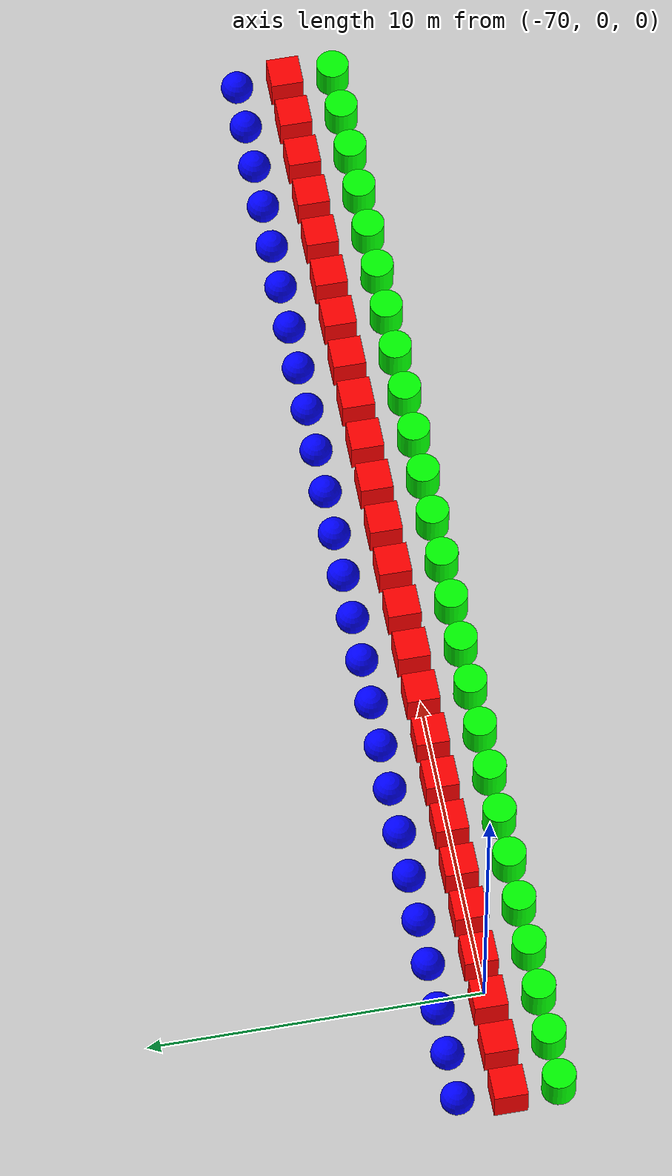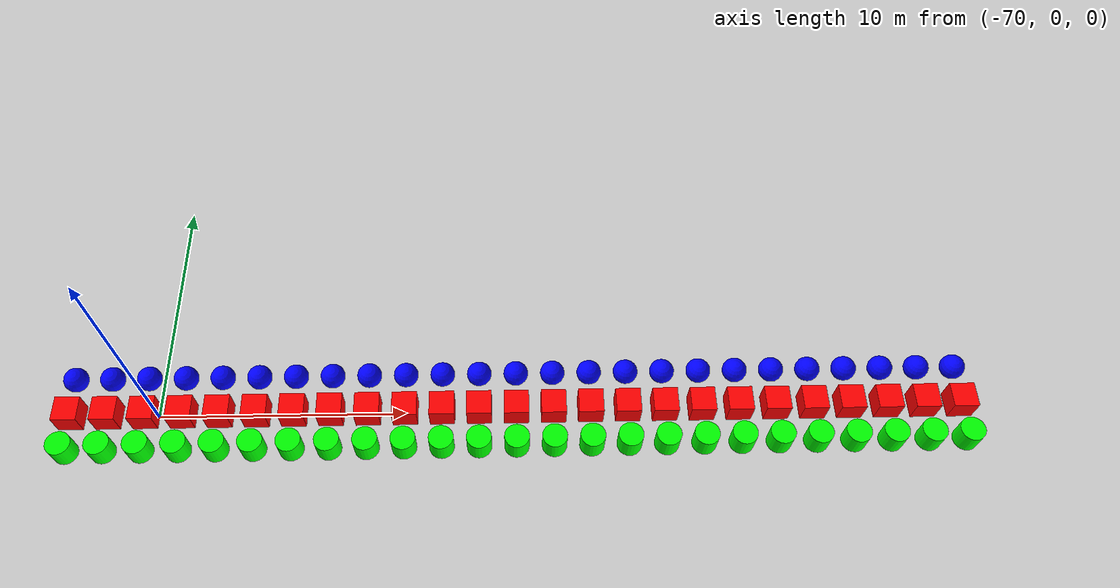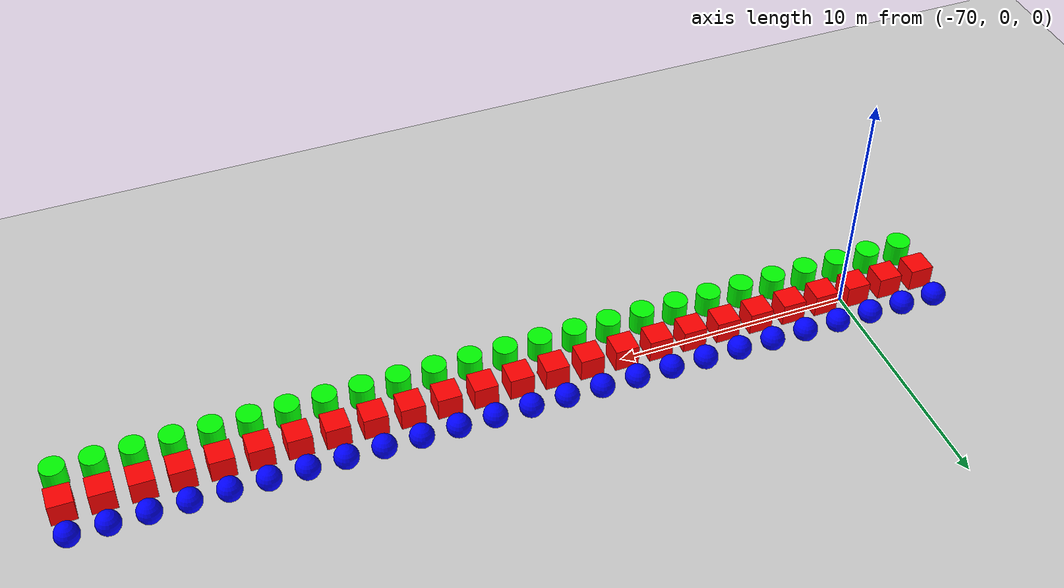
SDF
<sdf version="1.6">
 <world name="shapes">
  <model name="ground_plane">
   <static>true</static>
   <link name="link">
    <collision name="collision">
     <geometry><plane><normal>0 0 1</normal><size>100 100</size></plane></geometry>
    </collision>
    <visual name="visual">
     <geometry><plane><normal>0 0 1</normal><size>100 100</size></plane></geometry>
     <material>
      <ambient>0.8 0.8 0.8 1</ambient>
      <diffuse>0.8 0.8 0.8 1</diffuse>
      <specular>0.8 0.8 0.8 1</specular>
     </material>
    </visual>
   </link>
  </model>
  <model name="box_451">
   <static>false</static>
   <pose>-73.5 0 0.5 0 0 0</pose>
   <link name="box_link">
    <inertial>
     <inertia><ixx>1</ixx><ixy>0</ixy><ixz>0</ixz><iyy>1</iyy><iyz>0</iyz><izz>1</izz></inertia>
     <mass>1.0</mass>
    </inertial>
    <collision name="box_collision"><geometry><box><size>1 1 1</size></box></geometry></collision>
    <visual name="box_visual">
     <geometry><box><size>1 1 1</size></box></geometry>
     <material><ambient>1 0 0 1</ambient><diffuse>1 0 0 1</diffuse><specular>1 0 0 1</specular></material>
    </visual>
   </link>
  </model>
  <model name="cylinder_451">
   <static>false</static>
   <pose>-73.5 -1.5 0.5 0 0 0</pose>
   <link name="cylinder_link">
    <inertial>
     <inertia><ixx>2</ixx><ixy>0</ixy><ixz>0</ixz><iyy>2</iyy><iyz>0</iyz><izz>2</izz></inertia>
     <mass>2.0</mass>
    </inertial>
    <collision name="cylinder_collision">
     <geometry><cylinder><radius>0.5</radius><length>1.0</length></cylinder></geometry>
    </collision>
    <visual name="cylinder_visual">
     <geometry><cylinder><radius>0.5</radius><length>1.0</length></cylinder></geometry>
     <material><ambient>0 1 0 1</ambient><diffuse>0 1 0 1</diffuse><specular>0 1 0 1</specular></material>
    </visual>
   </link>
  </model>
  <model name="sphere_451">
   <static>false</static>
   <pose>-73.5 1.5 0.5 0 0 0</pose>
   <link name="sphere_link">
    <inertial>
     <inertia><ixx>3</ixx><ixy>0</ixy><ixz>0</ixz><iyy>3</iyy><iyz>0</iyz><izz>3</izz></inertia>
     <mass>3.0</mass>
    </inertial>
    <collision name="sphere_collision"><geometry><sphere><radius>0.5</radius></sphere></geometry></collision>
    <visual name="sphere_visual">
     <geometry><sphere><radius>0.5</radius></sphere></geometry>
     <material><ambient>0 0 1 1</ambient><diffuse>0 0 1 1</diffuse><specular>0 0 1 1</specular></material>
    </visual>
   </link>
  </model>
  <model name="box_452">
   <static>false</static>
   <pose>-72.0 0 0.5 0 0 0</pose>
   <link name="box_link">
    <inertial>
     <inertia><ixx>1</ixx><ixy>0</ixy><ixz>0</ixz><iyy>1</iyy><iyz>0</iyz><izz>1</izz></inertia>
     <mass>1.0</mass>
    </inertial>
    <collision name="box_collision"><geometry><box><size>1 1 1</size></box></geometry></collision>
    <visual name="box_visual">
     <geometry><box><size>1 1 1</size></box></geometry>
     <material><ambient>1 0 0 1</ambient><diffuse>1 0 0 1</diffuse><specular>1 0 0 1</specular></material>
    </visual>
   </link>
  </model>
  <model name="cylinder_452">
   <static>false</static>
   <pose>-72.0 -1.5 0.5 0 0 0</pose>
   <link name="cylinder_link">
    <inertial>
     <inertia><ixx>2</ixx><ixy>0</ixy><ixz>0</ixz><iyy>2</iyy><iyz>0</iyz><izz>2</izz></inertia>
     <mass>2.0</mass>
    </inertial>
    <collision name="cylinder_collision">
     <geometry><cylinder><radius>0.5</radius><length>1.0</length></cylinder></geometry>
    </collision>
    <visual name="cylinder_visual">
     <geometry><cylinder><radius>0.5</radius><length>1.0</length></cylinder></geometry>
     <material><ambient>0 1 0 1</ambient><diffuse>0 1 0 1</diffuse><specular>0 1 0 1</specular></material>
    </visual>
   </link>
  </model>
  <model name="sphere_452">
   <static>false</static>
   <pose>-72.0 1.5 0.5 0 0 0</pose>
   <link name="sphere_link">
    <inertial>
     <inertia><ixx>3</ixx><ixy>0</ixy><ixz>0</ixz><iyy>3</iyy><iyz>0</iyz><izz>3</izz></inertia>
     <mass>3.0</mass>
    </inertial>
    <collision name="sphere_collision"><geometry><sphere><radius>0.5</radius></sphere></geometry></collision>
    <visual name="sphere_visual">
     <geometry><sphere><radius>0.5</radius></sphere></geometry>
     <material><ambient>0 0 1 1</ambient><diffuse>0 0 1 1</diffuse><specular>0 0 1 1</specular></material>
    </visual>
   </link>
  </model>
  <model name="box_453">
   <static>false</static>
   <pose>-70.5 0 0.5 0 0 0</pose>
   <link name="box_link">
    <inertial>
     <inertia><ixx>1</ixx><ixy>0</ixy><ixz>0</ixz><iyy>1</iyy><iyz>0</iyz><izz>1</izz></inertia>
     <mass>1.0</mass>
    </inertial>
    <collision name="box_collision"><geometry><box><size>1 1 1</size></box></geometry></collision>
    <visual name="box_visual">
     <geometry><box><size>1 1 1</size></box></geometry>
     <material><ambient>1 0 0 1</ambient><diffuse>1 0 0 1</diffuse><specular>1 0 0 1</specular></material>
    </visual>
   </link>
  </model>
  <model name="cylinder_453">
   <static>false</static>
   <pose>-70.5 -1.5 0.5 0 0 0</pose>
   <link name="cylinder_link">
    <inertial>
     <inertia><ixx>2</ixx><ixy>0</ixy><ixz>0</ixz><iyy>2</iyy><iyz>0</iyz><izz>2</izz></inertia>
     <mass>2.0</mass>
    </inertial>
    <collision name="cylinder_collision">
     <geometry><cylinder><radius>0.5</radius><length>1.0</length></cylinder></geometry>
    </collision>
    <visual name="cylinder_visual">
     <geometry><cylinder><radius>0.5</radius><length>1.0</length></cylinder></geometry>
     <material><ambient>0 1 0 1</ambient><diffuse>0 1 0 1</diffuse><specular>0 1 0 1</specular></material>
    </visual>
   </link>
  </model>
  <model name="sphere_453">
   <static>false</static>
   <pose>-70.5 1.5 0.5 0 0 0</pose>
   <link name="sphere_link">
    <inertial>
     <inertia><ixx>3</ixx><ixy>0</ixy><ixz>0</ixz><iyy>3</iyy><iyz>0</iyz><izz>3</izz></inertia>
     <mass>3.0</mass>
    </inertial>
    <collision name="sphere_collision"><geometry><sphere><radius>0.5</radius></sphere></geometry></collision>
    <visual name="sphere_visual">
     <geometry><sphere><radius>0.5</radius></sphere></geometry>
     <material><ambient>0 0 1 1</ambient><diffuse>0 0 1 1</diffuse><specular>0 0 1 1</specular></material>
    </visual>
   </link>
  </model>
  <model name="box_454">
   <static>false</static>
   <pose>-69.0 0 0.5 0 0 0</pose>
   <link name="box_link">
    <inertial>
     <inertia><ixx>1</ixx><ixy>0</ixy><ixz>0</ixz><iyy>1</iyy><iyz>0</iyz><izz>1</izz></inertia>
     <mass>1.0</mass>
    </inertial>
    <collision name="box_collision"><geometry><box><size>1 1 1</size></box></geometry></collision>
    <visual name="box_visual">
     <geometry><box><size>1 1 1</size></box></geometry>
     <material><ambient>1 0 0 1</ambient><diffuse>1 0 0 1</diffuse><specular>1 0 0 1</specular></material>
    </visual>
   </link>
  </model>
  <model name="cylinder_454">
   <static>false</static>
   <pose>-69.0 -1.5 0.5 0 0 0</pose>
   <link name="cylinder_link">
    <inertial>
     <inertia><ixx>2</ixx><ixy>0</ixy><ixz>0</ixz><iyy>2</iyy><iyz>0</iyz><izz>2</izz></inertia>
     <mass>2.0</mass>
    </inertial>
    <collision name="cylinder_collision">
     <geometry><cylinder><radius>0.5</radius><length>1.0</length></cylinder></geometry>
    </collision>
    <visual name="cylinder_visual">
     <geometry><cylinder><radius>0.5</radius><length>1.0</length></cylinder></geometry>
     <material><ambient>0 1 0 1</ambient><diffuse>0 1 0 1</diffuse><specular>0 1 0 1</specular></material>
    </visual>
   </link>
  </model>
  <model name="sphere_454">
   <static>false</static>
   <pose>-69.0 1.5 0.5 0 0 0</pose>
   <link name="sphere_link">
    <inertial>
     <inertia><ixx>3</ixx><ixy>0</ixy><ixz>0</ixz><iyy>3</iyy><iyz>0</iyz><izz>3</izz></inertia>
     <mass>3.0</mass>
    </inertial>
    <collision name="sphere_collision"><geometry><sphere><radius>0.5</radius></sphere></geometry></collision>
    <visual name="sphere_visual">
     <geometry><sphere><radius>0.5</radius></sphere></geometry>
     <material><ambient>0 0 1 1</ambient><diffuse>0 0 1 1</diffuse><specular>0 0 1 1</specular></material>
    </visual>
   </link>
  </model>
  <model name="box_455">
   <static>false</static>
   <pose>-67.5 0 0.5 0 0 0</pose>
   <link name="box_link">
    <inertial>
     <inertia><ixx>1</ixx><ixy>0</ixy><ixz>0</ixz><iyy>1</iyy><iyz>0</iyz><izz>1</izz></inertia>
     <mass>1.0</mass>
    </inertial>
    <collision name="box_collision"><geometry><box><size>1 1 1</size></box></geometry></collision>
    <visual name="box_visual">
     <geometry><box><size>1 1 1</size></box></geometry>
     <material><ambient>1 0 0 1</ambient><diffuse>1 0 0 1</diffuse><specular>1 0 0 1</specular></material>
    </visual>
   </link>
  </model>
  <model name="cylinder_455">
   <static>false</static>
   <pose>-67.5 -1.5 0.5 0 0 0</pose>
   <link name="cylinder_link">
    <inertial>
     <inertia><ixx>2</ixx><ixy>0</ixy><ixz>0</ixz><iyy>2</iyy><iyz>0</iyz><izz>2</izz></inertia>
     <mass>2.0</mass>
    </inertial>
    <collision name="cylinder_collision">
     <geometry><cylinder><radius>0.5</radius><length>1.0</length></cylinder></geometry>
    </collision>
    <visual name="cylinder_visual">
     <geometry><cylinder><radius>0.5</radius><length>1.0</length></cylinder></geometry>
     <material><ambient>0 1 0 1</ambient><diffuse>0 1 0 1</diffuse><specular>0 1 0 1</specular></material>
    </visual>
   </link>
  </model>
  <model name="sphere_455">
   <static>false</static>
   <pose>-67.5 1.5 0.5 0 0 0</pose>
   <link name="sphere_link">
    <inertial>
     <inertia><ixx>3</ixx><ixy>0</ixy><ixz>0</ixz><iyy>3</iyy><iyz>0</iyz><izz>3</izz></inertia>
     <mass>3.0</mass>
    </inertial>
    <collision name="sphere_collision"><geometry><sphere><radius>0.5</radius></sphere></geometry></collision>
    <visual name="sphere_visual">
     <geometry><sphere><radius>0.5</radius></sphere></geometry>
     <material><ambient>0 0 1 1</ambient><diffuse>0 0 1 1</diffuse><specular>0 0 1 1</specular></material>
    </visual>
   </link>
  </model>
  <model name="box_456">
   <static>false</static>
   <pose>-66.0 0 0.5 0 0 0</pose>
   <link name="box_link">
    <inertial>
     <inertia><ixx>1</ixx><ixy>0</ixy><ixz>0</ixz><iyy>1</iyy><iyz>0</iyz><izz>1</izz></inertia>
     <mass>1.0</mass>
    </inertial>
    <collision name="box_collision"><geometry><box><size>1 1 1</size></box></geometry></collision>
    <visual name="box_visual">
     <geometry><box><size>1 1 1</size></box></geometry>
     <material><ambient>1 0 0 1</ambient><diffuse>1 0 0 1</diffuse><specular>1 0 0 1</specular></material>
    </visual>
   </link>
  </model>
  <model name="cylinder_456">
   <static>false</static>
   <pose>-66.0 -1.5 0.5 0 0 0</pose>
   <link name="cylinder_link">
    <inertial>
     <inertia><ixx>2</ixx><ixy>0</ixy><ixz>0</ixz><iyy>2</iyy><iyz>0</iyz><izz>2</izz></inertia>
     <mass>2.0</mass>
    </inertial>
    <collision name="cylinder_collision">
     <geometry><cylinder><radius>0.5</radius><length>1.0</length></cylinder></geometry>
    </collision>
    <visual name="cylinder_visual">
     <geometry><cylinder><radius>0.5</radius><length>1.0</length></cylinder></geometry>
     <material><ambient>0 1 0 1</ambient><diffuse>0 1 0 1</diffuse><specular>0 1 0 1</specular></material>
    </visual>
   </link>
  </model>
  <model name="sphere_456">
   <static>false</static>
   <pose>-66.0 1.5 0.5 0 0 0</pose>
   <link name="sphere_link">
    <inertial>
     <inertia><ixx>3</ixx><ixy>0</ixy><ixz>0</ixz><iyy>3</iyy><iyz>0</iyz><izz>3</izz></inertia>
     <mass>3.0</mass>
    </inertial>
    <collision name="sphere_collision"><geometry><sphere><radius>0.5</radius></sphere></geometry></collision>
    <visual name="sphere_visual">
     <geometry><sphere><radius>0.5</radius></sphere></geometry>
     <material><ambient>0 0 1 1</ambient><diffuse>0 0 1 1</diffuse><specular>0 0 1 1</specular></material>
    </visual>
   </link>
  </model>
  <model name="box_457">
   <static>false</static>
   <pose>-64.5 0 0.5 0 0 0</pose>
   <link name="box_link">
    <inertial>
     <inertia><ixx>1</ixx><ixy>0</ixy><ixz>0</ixz><iyy>1</iyy><iyz>0</iyz><izz>1</izz></inertia>
     <mass>1.0</mass>
    </inertial>
    <collision name="box_collision"><geometry><box><size>1 1 1</size></box></geometry></collision>
    <visual name="box_visual">
     <geometry><box><size>1 1 1</size></box></geometry>
     <material><ambient>1 0 0 1</ambient><diffuse>1 0 0 1</diffuse><specular>1 0 0 1</specular></material>
    </visual>
   </link>
  </model>
  <model name="cylinder_457">
   <static>false</static>
   <pose>-64.5 -1.5 0.5 0 0 0</pose>
   <link name="cylinder_link">
    <inertial>
     <inertia><ixx>2</ixx><ixy>0</ixy><ixz>0</ixz><iyy>2</iyy><iyz>0</iyz><izz>2</izz></inertia>
     <mass>2.0</mass>
    </inertial>
    <collision name="cylinder_collision">
     <geometry><cylinder><radius>0.5</radius><length>1.0</length></cylinder></geometry>
    </collision>
    <visual name="cylinder_visual">
     <geometry><cylinder><radius>0.5</radius><length>1.0</length></cylinder></geometry>
     <material><ambient>0 1 0 1</ambient><diffuse>0 1 0 1</diffuse><specular>0 1 0 1</specular></material>
    </visual>
   </link>
  </model>
  <model name="sphere_457">
   <static>false</static>
   <pose>-64.5 1.5 0.5 0 0 0</pose>
   <link name="sphere_link">
    <inertial>
     <inertia><ixx>3</ixx><ixy>0</ixy><ixz>0</ixz><iyy>3</iyy><iyz>0</iyz><izz>3</izz></inertia>
     <mass>3.0</mass>
    </inertial>
    <collision name="sphere_collision"><geometry><sphere><radius>0.5</radius></sphere></geometry></collision>
    <visual name="sphere_visual">
     <geometry><sphere><radius>0.5</radius></sphere></geometry>
     <material><ambient>0 0 1 1</ambient><diffuse>0 0 1 1</diffuse><specular>0 0 1 1</specular></material>
    </visual>
   </link>
  </model>
  <model name="box_458">
   <static>false</static>
   <pose>-63.0 0 0.5 0 0 0</pose>
   <link name="box_link">
    <inertial>
     <inertia><ixx>1</ixx><ixy>0</ixy><ixz>0</ixz><iyy>1</iyy><iyz>0</iyz><izz>1</izz></inertia>
     <mass>1.0</mass>
    </inertial>
    <collision name="box_collision"><geometry><box><size>1 1 1</size></box></geometry></collision>
    <visual name="box_visual">
     <geometry><box><size>1 1 1</size></box></geometry>
     <material><ambient>1 0 0 1</ambient><diffuse>1 0 0 1</diffuse><specular>1 0 0 1</specular></material>
    </visual>
   </link>
  </model>
  <model name="cylinder_458">
   <static>false</static>
   <pose>-63.0 -1.5 0.5 0 0 0</pose>
   <link name="cylinder_link">
    <inertial>
     <inertia><ixx>2</ixx><ixy>0</ixy><ixz>0</ixz><iyy>2</iyy><iyz>0</iyz><izz>2</izz></inertia>
     <mass>2.0</mass>
    </inertial>
    <collision name="cylinder_collision">
     <geometry><cylinder><radius>0.5</radius><length>1.0</length></cylinder></geometry>
    </collision>
    <visual name="cylinder_visual">
     <geometry><cylinder><radius>0.5</radius><length>1.0</length></cylinder></geometry>
     <material><ambient>0 1 0 1</ambient><diffuse>0 1 0 1</diffuse><specular>0 1 0 1</specular></material>
    </visual>
   </link>
  </model>
  <model name="sphere_458">
   <static>false</static>
   <pose>-63.0 1.5 0.5 0 0 0</pose>
   <link name="sphere_link">
    <inertial>
     <inertia><ixx>3</ixx><ixy>0</ixy><ixz>0</ixz><iyy>3</iyy><iyz>0</iyz><izz>3</izz></inertia>
     <mass>3.0</mass>
    </inertial>
    <collision name="sphere_collision"><geometry><sphere><radius>0.5</radius></sphere></geometry></collision>
    <visual name="sphere_visual">
     <geometry><sphere><radius>0.5</radius></sphere></geometry>
     <material><ambient>0 0 1 1</ambient><diffuse>0 0 1 1</diffuse><specular>0 0 1 1</specular></material>
    </visual>
   </link>
  </model>
  <model name="box_459">
   <static>false</static>
   <pose>-61.5 0 0.5 0 0 0</pose>
   <link name="box_link">
    <inertial>
     <inertia><ixx>1</ixx><ixy>0</ixy><ixz>0</ixz><iyy>1</iyy><iyz>0</iyz><izz>1</izz></inertia>
     <mass>1.0</mass>
    </inertial>
    <collision name="box_collision"><geometry><box><size>1 1 1</size></box></geometry></collision>
    <visual name="box_visual">
     <geometry><box><size>1 1 1</size></box></geometry>
     <material><ambient>1 0 0 1</ambient><diffuse>1 0 0 1</diffuse><specular>1 0 0 1</specular></material>
    </visual>
   </link>
  </model>
  <model name="cylinder_459">
   <static>false</static>
   <pose>-61.5 -1.5 0.5 0 0 0</pose>
   <link name="cylinder_link">
    <inertial>
     <inertia><ixx>2</ixx><ixy>0</ixy><ixz>0</ixz><iyy>2</iyy><iyz>0</iyz><izz>2</izz></inertia>
     <mass>2.0</mass>
    </inertial>
    <collision name="cylinder_collision">
     <geometry><cylinder><radius>0.5</radius><length>1.0</length></cylinder></geometry>
    </collision>
    <visual name="cylinder_visual">
     <geometry><cylinder><radius>0.5</radius><length>1.0</length></cylinder></geometry>
     <material><ambient>0 1 0 1</ambient><diffuse>0 1 0 1</diffuse><specular>0 1 0 1</specular></material>
    </visual>
   </link>
  </model>
  <model name="sphere_459">
   <static>false</static>
   <pose>-61.5 1.5 0.5 0 0 0</pose>
   <link name="sphere_link">
    <inertial>
     <inertia><ixx>3</ixx><ixy>0</ixy><ixz>0</ixz><iyy>3</iyy><iyz>0</iyz><izz>3</izz></inertia>
     <mass>3.0</mass>
    </inertial>
    <collision name="sphere_collision"><geometry><sphere><radius>0.5</radius></sphere></geometry></collision>
    <visual name="sphere_visual">
     <geometry><sphere><radius>0.5</radius></sphere></geometry>
     <material><ambient>0 0 1 1</ambient><diffuse>0 0 1 1</diffuse><specular>0 0 1 1</specular></material>
    </visual>
   </link>
  </model>
  <model name="box_460">
   <static>false</static>
   <pose>-60.0 0 0.5 0 0 0</pose>
   <link name="box_link">
    <inertial>
     <inertia><ixx>1</ixx><ixy>0</ixy><ixz>0</ixz><iyy>1</iyy><iyz>0</iyz><izz>1</izz></inertia>
     <mass>1.0</mass>
    </inertial>
    <collision name="box_collision"><geometry><box><size>1 1 1</size></box></geometry></collision>
    <visual name="box_visual">
     <geometry><box><size>1 1 1</size></box></geometry>
     <material><ambient>1 0 0 1</ambient><diffuse>1 0 0 1</diffuse><specular>1 0 0 1</specular></material>
    </visual>
   </link>
  </model>
  <model name="cylinder_460">
   <static>false</static>
   <pose>-60.0 -1.5 0.5 0 0 0</pose>
   <link name="cylinder_link">
    <inertial>
     <inertia><ixx>2</ixx><ixy>0</ixy><ixz>0</ixz><iyy>2</iyy><iyz>0</iyz><izz>2</izz></inertia>
     <mass>2.0</mass>
    </inertial>
    <collision name="cylinder_collision">
     <geometry><cylinder><radius>0.5</radius><length>1.0</length></cylinder></geometry>
    </collision>
    <visual name="cylinder_visual">
     <geometry><cylinder><radius>0.5</radius><length>1.0</length></cylinder></geometry>
     <material><ambient>0 1 0 1</ambient><diffuse>0 1 0 1</diffuse><specular>0 1 0 1</specular></material>
    </visual>
   </link>
  </model>
  <model name="sphere_460">
   <static>false</static>
   <pose>-60.0 1.5 0.5 0 0 0</pose>
   <link name="sphere_link">
    <inertial>
     <inertia><ixx>3</ixx><ixy>0</ixy><ixz>0</ixz><iyy>3</iyy><iyz>0</iyz><izz>3</izz></inertia>
     <mass>3.0</mass>
    </inertial>
    <collision name="sphere_collision"><geometry><sphere><radius>0.5</radius></sphere></geometry></collision>
    <visual name="sphere_visual">
     <geometry><sphere><radius>0.5</radius></sphere></geometry>
     <material><ambient>0 0 1 1</ambient><diffuse>0 0 1 1</diffuse><specular>0 0 1 1</specular></material>
    </visual>
   </link>
  </model>
  <model name="box_461">
   <static>false</static>
   <pose>-58.5 0 0.5 0 0 0</pose>
   <link name="box_link">
    <inertial>
     <inertia><ixx>1</ixx><ixy>0</ixy><ixz>0</ixz><iyy>1</iyy><iyz>0</iyz><izz>1</izz></inertia>
     <mass>1.0</mass>
    </inertial>
    <collision name="box_collision"><geometry><box><size>1 1 1</size></box></geometry></collision>
    <visual name="box_visual">
     <geometry><box><size>1 1 1</size></box></geometry>
     <material><ambient>1 0 0 1</ambient><diffuse>1 0 0 1</diffuse><specular>1 0 0 1</specular></material>
    </visual>
   </link>
  </model>
  <model name="cylinder_461">
   <static>false</static>
   <pose>-58.5 -1.5 0.5 0 0 0</pose>
   <link name="cylinder_link">
    <inertial>
     <inertia><ixx>2</ixx><ixy>0</ixy><ixz>0</ixz><iyy>2</iyy><iyz>0</iyz><izz>2</izz></inertia>
     <mass>2.0</mass>
    </inertial>
    <collision name="cylinder_collision">
     <geometry><cylinder><radius>0.5</radius><length>1.0</length></cylinder></geometry>
    </collision>
    <visual name="cylinder_visual">
     <geometry><cylinder><radius>0.5</radius><length>1.0</length></cylinder></geometry>
     <material><ambient>0 1 0 1</ambient><diffuse>0 1 0 1</diffuse><specular>0 1 0 1</specular></material>
    </visual>
   </link>
  </model>
  <model name="sphere_461">
   <static>false</static>
   <pose>-58.5 1.5 0.5 0 0 0</pose>
   <link name="sphere_link">
    <inertial>
     <inertia><ixx>3</ixx><ixy>0</ixy><ixz>0</ixz><iyy>3</iyy><iyz>0</iyz><izz>3</izz></inertia>
     <mass>3.0</mass>
    </inertial>
    <collision name="sphere_collision"><geometry><sphere><radius>0.5</radius></sphere></geometry></collision>
    <visual name="sphere_visual">
     <geometry><sphere><radius>0.5</radius></sphere></geometry>
     <material><ambient>0 0 1 1</ambient><diffuse>0 0 1 1</diffuse><specular>0 0 1 1</specular></material>
    </visual>
   </link>
  </model>
  <model name="box_462">
   <static>false</static>
   <pose>-57.0 0 0.5 0 0 0</pose>
   <link name="box_link">
    <inertial>
     <inertia><ixx>1</ixx><ixy>0</ixy><ixz>0</ixz><iyy>1</iyy><iyz>0</iyz><izz>1</izz></inertia>
     <mass>1.0</mass>
    </inertial>
    <collision name="box_collision"><geometry><box><size>1 1 1</size></box></geometry></collision>
    <visual name="box_visual">
     <geometry><box><size>1 1 1</size></box></geometry>
     <material><ambient>1 0 0 1</ambient><diffuse>1 0 0 1</diffuse><specular>1 0 0 1</specular></material>
    </visual>
   </link>
  </model>
  <model name="cylinder_462">
   <static>false</static>
   <pose>-57.0 -1.5 0.5 0 0 0</pose>
   <link name="cylinder_link">
    <inertial>
     <inertia><ixx>2</ixx><ixy>0</ixy><ixz>0</ixz><iyy>2</iyy><iyz>0</iyz><izz>2</izz></inertia>
     <mass>2.0</mass>
    </inertial>
    <collision name="cylinder_collision">
     <geometry><cylinder><radius>0.5</radius><length>1.0</length></cylinder></geometry>
    </collision>
    <visual name="cylinder_visual">
     <geometry><cylinder><radius>0.5</radius><length>1.0</length></cylinder></geometry>
     <material><ambient>0 1 0 1</ambient><diffuse>0 1 0 1</diffuse><specular>0 1 0 1</specular></material>
    </visual>
   </link>
  </model>
  <model name="sphere_462">
   <static>false</static>
   <pose>-57.0 1.5 0.5 0 0 0</pose>
   <link name="sphere_link">
    <inertial>
     <inertia><ixx>3</ixx><ixy>0</ixy><ixz>0</ixz><iyy>3</iyy><iyz>0</iyz><izz>3</izz></inertia>
     <mass>3.0</mass>
    </inertial>
    <collision name="sphere_collision"><geometry><sphere><radius>0.5</radius></sphere></geometry></collision>
    <visual name="sphere_visual">
     <geometry><sphere><radius>0.5</radius></sphere></geometry>
     <material><ambient>0 0 1 1</ambient><diffuse>0 0 1 1</diffuse><specular>0 0 1 1</specular></material>
    </visual>
   </link>
  </model>
  <model name="box_463">
   <static>false</static>
   <pose>-55.5 0 0.5 0 0 0</pose>
   <link name="box_link">
    <inertial>
     <inertia><ixx>1</ixx><ixy>0</ixy><ixz>0</ixz><iyy>1</iyy><iyz>0</iyz><izz>1</izz></inertia>
     <mass>1.0</mass>
    </inertial>
    <collision name="box_collision"><geometry><box><size>1 1 1</size></box></geometry></collision>
    <visual name="box_visual">
     <geometry><box><size>1 1 1</size></box></geometry>
     <material><ambient>1 0 0 1</ambient><diffuse>1 0 0 1</diffuse><specular>1 0 0 1</specular></material>
    </visual>
   </link>
  </model>
  <model name="cylinder_463">
   <static>false</static>
   <pose>-55.5 -1.5 0.5 0 0 0</pose>
   <link name="cylinder_link">
    <inertial>
     <inertia><ixx>2</ixx><ixy>0</ixy><ixz>0</ixz><iyy>2</iyy><iyz>0</iyz><izz>2</izz></inertia>
     <mass>2.0</mass>
    </inertial>
    <collision name="cylinder_collision">
     <geometry><cylinder><radius>0.5</radius><length>1.0</length></cylinder></geometry>
    </collision>
    <visual name="cylinder_visual">
     <geometry><cylinder><radius>0.5</radius><length>1.0</length></cylinder></geometry>
     <material><ambient>0 1 0 1</ambient><diffuse>0 1 0 1</diffuse><specular>0 1 0 1</specular></material>
    </visual>
   </link>
  </model>
  <model name="sphere_463">
   <static>false</static>
   <pose>-55.5 1.5 0.5 0 0 0</pose>
   <link name="sphere_link">
    <inertial>
     <inertia><ixx>3</ixx><ixy>0</ixy><ixz>0</ixz><iyy>3</iyy><iyz>0</iyz><izz>3</izz></inertia>
     <mass>3.0</mass>
    </inertial>
    <collision name="sphere_collision"><geometry><sphere><radius>0.5</radius></sphere></geometry></collision>
    <visual name="sphere_visual">
     <geometry><sphere><radius>0.5</radius></sphere></geometry>
     <material><ambient>0 0 1 1</ambient><diffuse>0 0 1 1</diffuse><specular>0 0 1 1</specular></material>
    </visual>
   </link>
  </model>
  <model name="box_464">
   <static>false</static>
   <pose>-54.0 0 0.5 0 0 0</pose>
   <link name="box_link">
    <inertial>
     <inertia><ixx>1</ixx><ixy>0</ixy><ixz>0</ixz><iyy>1</iyy><iyz>0</iyz><izz>1</izz></inertia>
     <mass>1.0</mass>
    </inertial>
    <collision name="box_collision"><geometry><box><size>1 1 1</size></box></geometry></collision>
    <visual name="box_visual">
     <geometry><box><size>1 1 1</size></box></geometry>
     <material><ambient>1 0 0 1</ambient><diffuse>1 0 0 1</diffuse><specular>1 0 0 1</specular></material>
    </visual>
   </link>
  </model>
  <model name="cylinder_464">
   <static>false</static>
   <pose>-54.0 -1.5 0.5 0 0 0</pose>
   <link name="cylinder_link">
    <inertial>
     <inertia><ixx>2</ixx><ixy>0</ixy><ixz>0</ixz><iyy>2</iyy><iyz>0</iyz><izz>2</izz></inertia>
     <mass>2.0</mass>
    </inertial>
    <collision name="cylinder_collision">
     <geometry><cylinder><radius>0.5</radius><length>1.0</length></cylinder></geometry>
    </collision>
    <visual name="cylinder_visual">
     <geometry><cylinder><radius>0.5</radius><length>1.0</length></cylinder></geometry>
     <material><ambient>0 1 0 1</ambient><diffuse>0 1 0 1</diffuse><specular>0 1 0 1</specular></material>
    </visual>
   </link>
  </model>
  <model name="sphere_464">
   <static>false</static>
   <pose>-54.0 1.5 0.5 0 0 0</pose>
   <link name="sphere_link">
    <inertial>
     <inertia><ixx>3</ixx><ixy>0</ixy><ixz>0</ixz><iyy>3</iyy><iyz>0</iyz><izz>3</izz></inertia>
     <mass>3.0</mass>
    </inertial>
    <collision name="sphere_collision"><geometry><sphere><radius>0.5</radius></sphere></geometry></collision>
    <visual name="sphere_visual">
     <geometry><sphere><radius>0.5</radius></sphere></geometry>
     <material><ambient>0 0 1 1</ambient><diffuse>0 0 1 1</diffuse><specular>0 0 1 1</specular></material>
    </visual>
   </link>
  </model>
  <model name="box_465">
   <static>false</static>
   <pose>-52.5 0 0.5 0 0 0</pose>
   <link name="box_link">
    <inertial>
     <inertia><ixx>1</ixx><ixy>0</ixy><ixz>0</ixz><iyy>1</iyy><iyz>0</iyz><izz>1</izz></inertia>
     <mass>1.0</mass>
    </inertial>
    <collision name="box_collision"><geometry><box><size>1 1 1</size></box></geometry></collision>
    <visual name="box_visual">
     <geometry><box><size>1 1 1</size></box></geometry>
     <material><ambient>1 0 0 1</ambient><diffuse>1 0 0 1</diffuse><specular>1 0 0 1</specular></material>
    </visual>
   </link>
  </model>
  <model name="cylinder_465">
   <static>false</static>
   <pose>-52.5 -1.5 0.5 0 0 0</pose>
   <link name="cylinder_link">
    <inertial>
     <inertia><ixx>2</ixx><ixy>0</ixy><ixz>0</ixz><iyy>2</iyy><iyz>0</iyz><izz>2</izz></inertia>
     <mass>2.0</mass>
    </inertial>
    <collision name="cylinder_collision">
     <geometry><cylinder><radius>0.5</radius><length>1.0</length></cylinder></geometry>
    </collision>
    <visual name="cylinder_visual">
     <geometry><cylinder><radius>0.5</radius><length>1.0</length></cylinder></geometry>
     <material><ambient>0 1 0 1</ambient><diffuse>0 1 0 1</diffuse><specular>0 1 0 1</specular></material>
    </visual>
   </link>
  </model>
  <model name="sphere_465">
   <static>false</static>
   <pose>-52.5 1.5 0.5 0 0 0</pose>
   <link name="sphere_link">
    <inertial>
     <inertia><ixx>3</ixx><ixy>0</ixy><ixz>0</ixz><iyy>3</iyy><iyz>0</iyz><izz>3</izz></inertia>
     <mass>3.0</mass>
    </inertial>
    <collision name="sphere_collision"><geometry><sphere><radius>0.5</radius></sphere></geometry></collision>
    <visual name="sphere_visual">
     <geometry><sphere><radius>0.5</radius></sphere></geometry>
     <material><ambient>0 0 1 1</ambient><diffuse>0 0 1 1</diffuse><specular>0 0 1 1</specular></material>
    </visual>
   </link>
  </model>
  <model name="box_466">
   <static>false</static>
   <pose>-51.0 0 0.5 0 0 0</pose>
   <link name="box_link">
    <inertial>
     <inertia><ixx>1</ixx><ixy>0</ixy><ixz>0</ixz><iyy>1</iyy><iyz>0</iyz><izz>1</izz></inertia>
     <mass>1.0</mass>
    </inertial>
    <collision name="box_collision"><geometry><box><size>1 1 1</size></box></geometry></collision>
    <visual name="box_visual">
     <geometry><box><size>1 1 1</size></box></geometry>
     <material><ambient>1 0 0 1</ambient><diffuse>1 0 0 1</diffuse><specular>1 0 0 1</specular></material>
    </visual>
   </link>
  </model>
  <model name="cylinder_466">
   <static>false</static>
   <pose>-51.0 -1.5 0.5 0 0 0</pose>
   <link name="cylinder_link">
    <inertial>
     <inertia><ixx>2</ixx><ixy>0</ixy><ixz>0</ixz><iyy>2</iyy><iyz>0</iyz><izz>2</izz></inertia>
     <mass>2.0</mass>
    </inertial>
    <collision name="cylinder_collision">
     <geometry><cylinder><radius>0.5</radius><length>1.0</length></cylinder></geometry>
    </collision>
    <visual name="cylinder_visual">
     <geometry><cylinder><radius>0.5</radius><length>1.0</length></cylinder></geometry>
     <material><ambient>0 1 0 1</ambient><diffuse>0 1 0 1</diffuse><specular>0 1 0 1</specular></material>
    </visual>
   </link>
  </model>
  <model name="sphere_466">
   <static>false</static>
   <pose>-51.0 1.5 0.5 0 0 0</pose>
   <link name="sphere_link">
    <inertial>
     <inertia><ixx>3</ixx><ixy>0</ixy><ixz>0</ixz><iyy>3</iyy><iyz>0</iyz><izz>3</izz></inertia>
     <mass>3.0</mass>
    </inertial>
    <collision name="sphere_collision"><geometry><sphere><radius>0.5</radius></sphere></geometry></collision>
    <visual name="sphere_visual">
     <geometry><sphere><radius>0.5</radius></sphere></geometry>
     <material><ambient>0 0 1 1</ambient><diffuse>0 0 1 1</diffuse><specular>0 0 1 1</specular></material>
    </visual>
   </link>
  </model>
  <model name="box_467">
   <static>false</static>
   <pose>-49.5 0 0.5 0 0 0</pose>
   <link name="box_link">
    <inertial>
     <inertia><ixx>1</ixx><ixy>0</ixy><ixz>0</ixz><iyy>1</iyy><iyz>0</iyz><izz>1</izz></inertia>
     <mass>1.0</mass>
    </inertial>
    <collision name="box_collision"><geometry><box><size>1 1 1</size></box></geometry></collision>
    <visual name="box_visual">
     <geometry><box><size>1 1 1</size></box></geometry>
     <material><ambient>1 0 0 1</ambient><diffuse>1 0 0 1</diffuse><specular>1 0 0 1</specular></material>
    </visual>
   </link>
  </model>
  <model name="cylinder_467">
   <static>false</static>
   <pose>-49.5 -1.5 0.5 0 0 0</pose>
   <link name="cylinder_link">
    <inertial>
     <inertia><ixx>2</ixx><ixy>0</ixy><ixz>0</ixz><iyy>2</iyy><iyz>0</iyz><izz>2</izz></inertia>
     <mass>2.0</mass>
    </inertial>
    <collision name="cylinder_collision">
     <geometry><cylinder><radius>0.5</radius><length>1.0</length></cylinder></geometry>
    </collision>
    <visual name="cylinder_visual">
     <geometry><cylinder><radius>0.5</radius><length>1.0</length></cylinder></geometry>
     <material><ambient>0 1 0 1</ambient><diffuse>0 1 0 1</diffuse><specular>0 1 0 1</specular></material>
    </visual>
   </link>
  </model>
  <model name="sphere_467">
   <static>false</static>
   <pose>-49.5 1.5 0.5 0 0 0</pose>
   <link name="sphere_link">
    <inertial>
     <inertia><ixx>3</ixx><ixy>0</ixy><ixz>0</ixz><iyy>3</iyy><iyz>0</iyz><izz>3</izz></inertia>
     <mass>3.0</mass>
    </inertial>
    <collision name="sphere_collision"><geometry><sphere><radius>0.5</radius></sphere></geometry></collision>
    <visual name="sphere_visual">
     <geometry><sphere><radius>0.5</radius></sphere></geometry>
     <material><ambient>0 0 1 1</ambient><diffuse>0 0 1 1</diffuse><specular>0 0 1 1</specular></material>
    </visual>
   </link>
  </model>
  <model name="box_468">
   <static>false</static>
   <pose>-48.0 0 0.5 0 0 0</pose>
   <link name="box_link">
    <inertial>
     <inertia><ixx>1</ixx><ixy>0</ixy><ixz>0</ixz><iyy>1</iyy><iyz>0</iyz><izz>1</izz></inertia>
     <mass>1.0</mass>
    </inertial>
    <collision name="box_collision"><geometry><box><size>1 1 1</size></box></geometry></collision>
    <visual name="box_visual">
     <geometry><box><size>1 1 1</size></box></geometry>
     <material><ambient>1 0 0 1</ambient><diffuse>1 0 0 1</diffuse><specular>1 0 0 1</specular></material>
    </visual>
   </link>
  </model>
  <model name="cylinder_468">
   <static>false</static>
   <pose>-48.0 -1.5 0.5 0 0 0</pose>
   <link name="cylinder_link">
    <inertial>
     <inertia><ixx>2</ixx><ixy>0</ixy><ixz>0</ixz><iyy>2</iyy><iyz>0</iyz><izz>2</izz></inertia>
     <mass>2.0</mass>
    </inertial>
    <collision name="cylinder_collision">
     <geometry><cylinder><radius>0.5</radius><length>1.0</length></cylinder></geometry>
    </collision>
    <visual name="cylinder_visual">
     <geometry><cylinder><radius>0.5</radius><length>1.0</length></cylinder></geometry>
     <material><ambient>0 1 0 1</ambient><diffuse>0 1 0 1</diffuse><specular>0 1 0 1</specular></material>
    </visual>
   </link>
  </model>
  <model name="sphere_468">
   <static>false</static>
   <pose>-48.0 1.5 0.5 0 0 0</pose>
   <link name="sphere_link">
    <inertial>
     <inertia><ixx>3</ixx><ixy>0</ixy><ixz>0</ixz><iyy>3</iyy><iyz>0</iyz><izz>3</izz></inertia>
     <mass>3.0</mass>
    </inertial>
    <collision name="sphere_collision"><geometry><sphere><radius>0.5</radius></sphere></geometry></collision>
    <visual name="sphere_visual">
     <geometry><sphere><radius>0.5</radius></sphere></geometry>
     <material><ambient>0 0 1 1</ambient><diffuse>0 0 1 1</diffuse><specular>0 0 1 1</specular></material>
    </visual>
   </link>
  </model>
  <model name="box_469">
   <static>false</static>
   <pose>-46.5 0 0.5 0 0 0</pose>
   <link name="box_link">
    <inertial>
     <inertia><ixx>1</ixx><ixy>0</ixy><ixz>0</ixz><iyy>1</iyy><iyz>0</iyz><izz>1</izz></inertia>
     <mass>1.0</mass>
    </inertial>
    <collision name="box_collision"><geometry><box><size>1 1 1</size></box></geometry></collision>
    <visual name="box_visual">
     <geometry><box><size>1 1 1</size></box></geometry>
     <material><ambient>1 0 0 1</ambient><diffuse>1 0 0 1</diffuse><specular>1 0 0 1</specular></material>
    </visual>
   </link>
  </model>
  <model name="cylinder_469">
   <static>false</static>
   <pose>-46.5 -1.5 0.5 0 0 0</pose>
   <link name="cylinder_link">
    <inertial>
     <inertia><ixx>2</ixx><ixy>0</ixy><ixz>0</ixz><iyy>2</iyy><iyz>0</iyz><izz>2</izz></inertia>
     <mass>2.0</mass>
    </inertial>
    <collision name="cylinder_collision">
     <geometry><cylinder><radius>0.5</radius><length>1.0</length></cylinder></geometry>
    </collision>
    <visual name="cylinder_visual">
     <geometry><cylinder><radius>0.5</radius><length>1.0</length></cylinder></geometry>
     <material><ambient>0 1 0 1</ambient><diffuse>0 1 0 1</diffuse><specular>0 1 0 1</specular></material>
    </visual>
   </link>
  </model>
  <model name="sphere_469">
   <static>false</static>
   <pose>-46.5 1.5 0.5 0 0 0</pose>
   <link name="sphere_link">
    <inertial>
     <inertia><ixx>3</ixx><ixy>0</ixy><ixz>0</ixz><iyy>3</iyy><iyz>0</iyz><izz>3</izz></inertia>
     <mass>3.0</mass>
    </inertial>
    <collision name="sphere_collision"><geometry><sphere><radius>0.5</radius></sphere></geometry></collision>
    <visual name="sphere_visual">
     <geometry><sphere><radius>0.5</radius></sphere></geometry>
     <material><ambient>0 0 1 1</ambient><diffuse>0 0 1 1</diffuse><specular>0 0 1 1</specular></material>
    </visual>
   </link>
  </model>
  <model name="box_470">
   <static>false</static>
   <pose>-45.0 0 0.5 0 0 0</pose>
   <link name="box_link">
    <inertial>
     <inertia><ixx>1</ixx><ixy>0</ixy><ixz>0</ixz><iyy>1</iyy><iyz>0</iyz><izz>1</izz></inertia>
     <mass>1.0</mass>
    </inertial>
    <collision name="box_collision"><geometry><box><size>1 1 1</size></box></geometry></collision>
    <visual name="box_visual">
     <geometry><box><size>1 1 1</size></box></geometry>
     <material><ambient>1 0 0 1</ambient><diffuse>1 0 0 1</diffuse><specular>1 0 0 1</specular></material>
    </visual>
   </link>
  </model>
  <model name="cylinder_470">
   <static>false</static>
   <pose>-45.0 -1.5 0.5 0 0 0</pose>
   <link name="cylinder_link">
    <inertial>
     <inertia><ixx>2</ixx><ixy>0</ixy><ixz>0</ixz><iyy>2</iyy><iyz>0</iyz><izz>2</izz></inertia>
     <mass>2.0</mass>
    </inertial>
    <collision name="cylinder_collision">
     <geometry><cylinder><radius>0.5</radius><length>1.0</length></cylinder></geometry>
    </collision>
    <visual name="cylinder_visual">
     <geometry><cylinder><radius>0.5</radius><length>1.0</length></cylinder></geometry>
     <material><ambient>0 1 0 1</ambient><diffuse>0 1 0 1</diffuse><specular>0 1 0 1</specular></material>
    </visual>
   </link>
  </model>
  <model name="sphere_470">
   <static>false</static>
   <pose>-45.0 1.5 0.5 0 0 0</pose>
   <link name="sphere_link">
    <inertial>
     <inertia><ixx>3</ixx><ixy>0</ixy><ixz>0</ixz><iyy>3</iyy><iyz>0</iyz><izz>3</izz></inertia>
     <mass>3.0</mass>
    </inertial>
    <collision name="sphere_collision"><geometry><sphere><radius>0.5</radius></sphere></geometry></collision>
    <visual name="sphere_visual">
     <geometry><sphere><radius>0.5</radius></sphere></geometry>
     <material><ambient>0 0 1 1</ambient><diffuse>0 0 1 1</diffuse><specular>0 0 1 1</specular></material>
    </visual>
   </link>
  </model>
  <model name="box_471">
   <static>false</static>
   <pose>-43.5 0 0.5 0 0 0</pose>
   <link name="box_link">
    <inertial>
     <inertia><ixx>1</ixx><ixy>0</ixy><ixz>0</ixz><iyy>1</iyy><iyz>0</iyz><izz>1</izz></inertia>
     <mass>1.0</mass>
    </inertial>
    <collision name="box_collision"><geometry><box><size>1 1 1</size></box></geometry></collision>
    <visual name="box_visual">
     <geometry><box><size>1 1 1</size></box></geometry>
     <material><ambient>1 0 0 1</ambient><diffuse>1 0 0 1</diffuse><specular>1 0 0 1</specular></material>
    </visual>
   </link>
  </model>
  <model name="cylinder_471">
   <static>false</static>
   <pose>-43.5 -1.5 0.5 0 0 0</pose>
   <link name="cylinder_link">
    <inertial>
     <inertia><ixx>2</ixx><ixy>0</ixy><ixz>0</ixz><iyy>2</iyy><iyz>0</iyz><izz>2</izz></inertia>
     <mass>2.0</mass>
    </inertial>
    <collision name="cylinder_collision">
     <geometry><cylinder><radius>0.5</radius><length>1.0</length></cylinder></geometry>
    </collision>
    <visual name="cylinder_visual">
     <geometry><cylinder><radius>0.5</radius><length>1.0</length></cylinder></geometry>
     <material><ambient>0 1 0 1</ambient><diffuse>0 1 0 1</diffuse><specular>0 1 0 1</specular></material>
    </visual>
   </link>
  </model>
  <model name="sphere_471">
   <static>false</static>
   <pose>-43.5 1.5 0.5 0 0 0</pose>
   <link name="sphere_link">
    <inertial>
     <inertia><ixx>3</ixx><ixy>0</ixy><ixz>0</ixz><iyy>3</iyy><iyz>0</iyz><izz>3</izz></inertia>
     <mass>3.0</mass>
    </inertial>
    <collision name="sphere_collision"><geometry><sphere><radius>0.5</radius></sphere></geometry></collision>
    <visual name="sphere_visual">
     <geometry><sphere><radius>0.5</radius></sphere></geometry>
     <material><ambient>0 0 1 1</ambient><diffuse>0 0 1 1</diffuse><specular>0 0 1 1</specular></material>
    </visual>
   </link>
  </model>
  <model name="box_472">
   <static>false</static>
   <pose>-42.0 0 0.5 0 0 0</pose>
   <link name="box_link">
    <inertial>
     <inertia><ixx>1</ixx><ixy>0</ixy><ixz>0</ixz><iyy>1</iyy><iyz>0</iyz><izz>1</izz></inertia>
     <mass>1.0</mass>
    </inertial>
    <collision name="box_collision"><geometry><box><size>1 1 1</size></box></geometry></collision>
    <visual name="box_visual">
     <geometry><box><size>1 1 1</size></box></geometry>
     <material><ambient>1 0 0 1</ambient><diffuse>1 0 0 1</diffuse><specular>1 0 0 1</specular></material>
    </visual>
   </link>
  </model>
  <model name="cylinder_472">
   <static>false</static>
   <pose>-42.0 -1.5 0.5 0 0 0</pose>
   <link name="cylinder_link">
    <inertial>
     <inertia><ixx>2</ixx><ixy>0</ixy><ixz>0</ixz><iyy>2</iyy><iyz>0</iyz><izz>2</izz></inertia>
     <mass>2.0</mass>
    </inertial>
    <collision name="cylinder_collision">
     <geometry><cylinder><radius>0.5</radius><length>1.0</length></cylinder></geometry>
    </collision>
    <visual name="cylinder_visual">
     <geometry><cylinder><radius>0.5</radius><length>1.0</length></cylinder></geometry>
     <material><ambient>0 1 0 1</ambient><diffuse>0 1 0 1</diffuse><specular>0 1 0 1</specular></material>
    </visual>
   </link>
  </model>
  <model name="sphere_472">
   <static>false</static>
   <pose>-42.0 1.5 0.5 0 0 0</pose>
   <link name="sphere_link">
    <inertial>
     <inertia><ixx>3</ixx><ixy>0</ixy><ixz>0</ixz><iyy>3</iyy><iyz>0</iyz><izz>3</izz></inertia>
     <mass>3.0</mass>
    </inertial>
    <collision name="sphere_collision"><geometry><sphere><radius>0.5</radius></sphere></geometry></collision>
    <visual name="sphere_visual">
     <geometry><sphere><radius>0.5</radius></sphere></geometry>
     <material><ambient>0 0 1 1</ambient><diffuse>0 0 1 1</diffuse><specular>0 0 1 1</specular></material>
    </visual>
   </link>
  </model>
  <model name="box_473">
   <static>false</static>
   <pose>-40.5 0 0.5 0 0 0</pose>
   <link name="box_link">
    <inertial>
     <inertia><ixx>1</ixx><ixy>0</ixy><ixz>0</ixz><iyy>1</iyy><iyz>0</iyz><izz>1</izz></inertia>
     <mass>1.0</mass>
    </inertial>
    <collision name="box_collision"><geometry><box><size>1 1 1</size></box></geometry></collision>
    <visual name="box_visual">
     <geometry><box><size>1 1 1</size></box></geometry>
     <material><ambient>1 0 0 1</ambient><diffuse>1 0 0 1</diffuse><specular>1 0 0 1</specular></material>
    </visual>
   </link>
  </model>
  <model name="cylinder_473">
   <static>false</static>
   <pose>-40.5 -1.5 0.5 0 0 0</pose>
   <link name="cylinder_link">
    <inertial>
     <inertia><ixx>2</ixx><ixy>0</ixy><ixz>0</ixz><iyy>2</iyy><iyz>0</iyz><izz>2</izz></inertia>
     <mass>2.0</mass>
    </inertial>
    <collision name="cylinder_collision">
     <geometry><cylinder><radius>0.5</radius><length>1.0</length></cylinder></geometry>
    </collision>
    <visual name="cylinder_visual">
     <geometry><cylinder><radius>0.5</radius><length>1.0</length></cylinder></geometry>
     <material><ambient>0 1 0 1</ambient><diffuse>0 1 0 1</diffuse><specular>0 1 0 1</specular></material>
    </visual>
   </link>
  </model>
  <model name="sphere_473">
   <static>false</static>
   <pose>-40.5 1.5 0.5 0 0 0</pose>
   <link name="sphere_link">
    <inertial>
     <inertia><ixx>3</ixx><ixy>0</ixy><ixz>0</ixz><iyy>3</iyy><iyz>0</iyz><izz>3</izz></inertia>
     <mass>3.0</mass>
    </inertial>
    <collision name="sphere_collision"><geometry><sphere><radius>0.5</radius></sphere></geometry></collision>
    <visual name="sphere_visual">
     <geometry><sphere><radius>0.5</radius></sphere></geometry>
     <material><ambient>0 0 1 1</ambient><diffuse>0 0 1 1</diffuse><specular>0 0 1 1</specular></material>
    </visual>
   </link>
  </model>
  <model name="box_474">
   <static>false</static>
   <pose>-39.0 0 0.5 0 0 0</pose>
   <link name="box_link">
    <inertial>
     <inertia><ixx>1</ixx><ixy>0</ixy><ixz>0</ixz><iyy>1</iyy><iyz>0</iyz><izz>1</izz></inertia>
     <mass>1.0</mass>
    </inertial>
    <collision name="box_collision"><geometry><box><size>1 1 1</size></box></geometry></collision>
    <visual name="box_visual">
     <geometry><box><size>1 1 1</size></box></geometry>
     <material><ambient>1 0 0 1</ambient><diffuse>1 0 0 1</diffuse><specular>1 0 0 1</specular></material>
    </visual>
   </link>
  </model>
  <model name="cylinder_474">
   <static>false</static>
   <pose>-39.0 -1.5 0.5 0 0 0</pose>
   <link name="cylinder_link">
    <inertial>
     <inertia><ixx>2</ixx><ixy>0</ixy><ixz>0</ixz><iyy>2</iyy><iyz>0</iyz><izz>2</izz></inertia>
     <mass>2.0</mass>
    </inertial>
    <collision name="cylinder_collision">
     <geometry><cylinder><radius>0.5</radius><length>1.0</length></cylinder></geometry>
    </collision>
    <visual name="cylinder_visual">
     <geometry><cylinder><radius>0.5</radius><length>1.0</length></cylinder></geometry>
     <material><ambient>0 1 0 1</ambient><diffuse>0 1 0 1</diffuse><specular>0 1 0 1</specular></material>
    </visual>
   </link>
  </model>
  <model name="sphere_474">
   <static>false</static>
   <pose>-39.0 1.5 0.5 0 0 0</pose>
   <link name="sphere_link">
    <inertial>
     <inertia><ixx>3</ixx><ixy>0</ixy><ixz>0</ixz><iyy>3</iyy><iyz>0</iyz><izz>3</izz></inertia>
     <mass>3.0</mass>
    </inertial>
    <collision name="sphere_collision"><geometry><sphere><radius>0.5</radius></sphere></geometry></collision>
    <visual name="sphere_visual">
     <geometry><sphere><radius>0.5</radius></sphere></geometry>
     <material><ambient>0 0 1 1</ambient><diffuse>0 0 1 1</diffuse><specular>0 0 1 1</specular></material>
    </visual>
   </link>
  </model>
  <model name="box_475">
   <static>false</static>
   <pose>-37.5 0 0.5 0 0 0</pose>
   <link name="box_link">
    <inertial>
     <inertia><ixx>1</ixx><ixy>0</ixy><ixz>0</ixz><iyy>1</iyy><iyz>0</iyz><izz>1</izz></inertia>
     <mass>1.0</mass>
    </inertial>
    <collision name="box_collision"><geometry><box><size>1 1 1</size></box></geometry></collision>
    <visual name="box_visual">
     <geometry><box><size>1 1 1</size></box></geometry>
     <material><ambient>1 0 0 1</ambient><diffuse>1 0 0 1</diffuse><specular>1 0 0 1</specular></material>
    </visual>
   </link>
  </model>
  <model name="cylinder_475">
   <static>false</static>
   <pose>-37.5 -1.5 0.5 0 0 0</pose>
   <link name="cylinder_link">
    <inertial>
     <inertia><ixx>2</ixx><ixy>0</ixy><ixz>0</ixz><iyy>2</iyy><iyz>0</iyz><izz>2</izz></inertia>
     <mass>2.0</mass>
    </inertial>
    <collision name="cylinder_collision">
     <geometry><cylinder><radius>0.5</radius><length>1.0</length></cylinder></geometry>
    </collision>
    <visual name="cylinder_visual">
     <geometry><cylinder><radius>0.5</radius><length>1.0</length></cylinder></geometry>
     <material><ambient>0 1 0 1</ambient><diffuse>0 1 0 1</diffuse><specular>0 1 0 1</specular></material>
    </visual>
   </link>
  </model>
  <model name="sphere_475">
   <static>false</static>
   <pose>-37.5 1.5 0.5 0 0 0</pose>
   <link name="sphere_link">
    <inertial>
     <inertia><ixx>3</ixx><ixy>0</ixy><ixz>0</ixz><iyy>3</iyy><iyz>0</iyz><izz>3</izz></inertia>
     <mass>3.0</mass>
    </inertial>
    <collision name="sphere_collision"><geometry><sphere><radius>0.5</radius></sphere></geometry></collision>
    <visual name="sphere_visual">
     <geometry><sphere><radius>0.5</radius></sphere></geometry>
     <material><ambient>0 0 1 1</ambient><diffuse>0 0 1 1</diffuse><specular>0 0 1 1</specular></material>
    </visual>
   </link>
  </model>
 </world>
</sdf>
